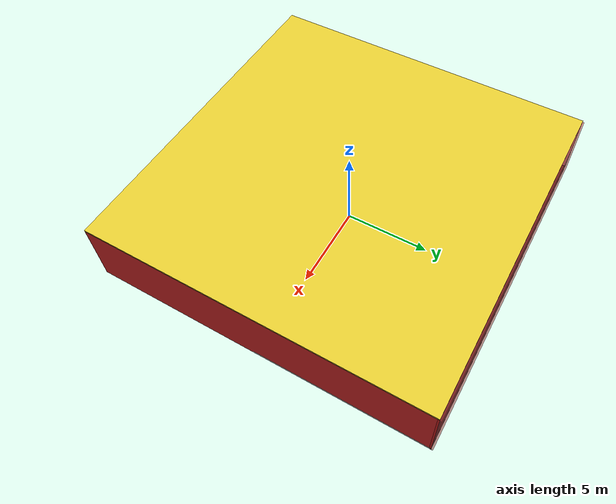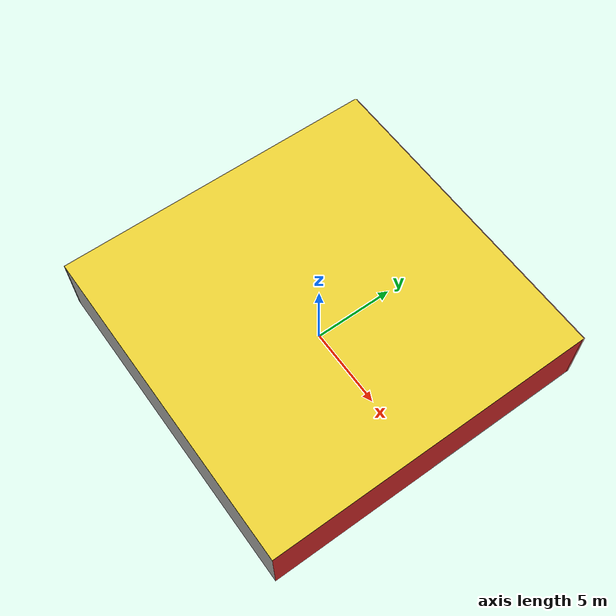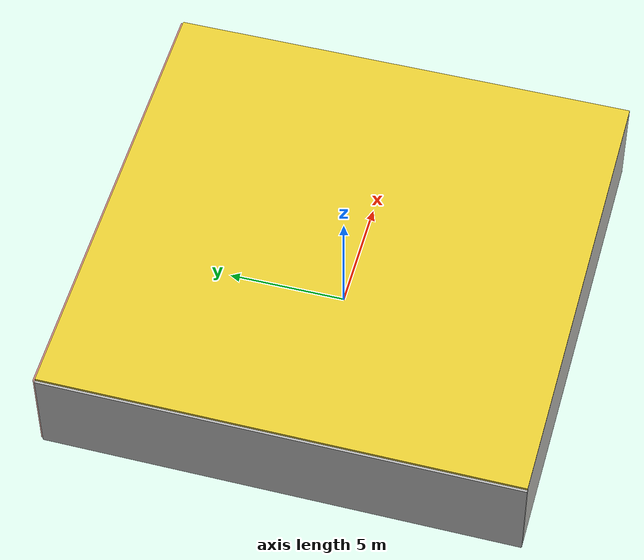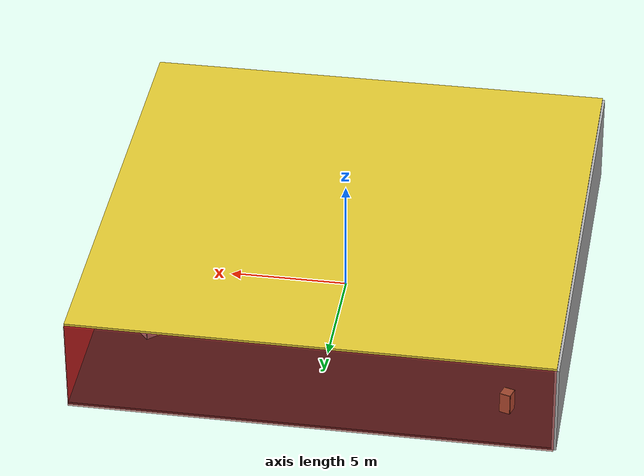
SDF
<sdf version="1.4">
 <world name="default">
  <physics type="ode">
   <max_step_size>0.001</max_step_size>
   <real_time_factor>1</real_time_factor>
   <real_time_update_rate>1000</real_time_update_rate>
   <gravity>0 0 -9.8</gravity>
  </physics>
  <scene><ambient>0.4 0.4 0.4 1</ambient><background>0.7 0.7 0.7 1</background><shadows>1</shadows></scene>
  <model name="Surrounding">
   <static>1</static>
   <link name="Ceiling">
    <collision name="Ceiling_Collision"><geometry><box><size>20 20 0.1</size></box></geometry></collision>
    <visual name="Ceiling_Visual">
     <geometry><box><size>20 20 0.1</size></box></geometry>
     <material>
      <script><uri>file://media/materials/scripts/gazebo.material</uri><name>Gazebo/ZincYellow</name></script>
     </material>
    </visual>
    <pose>0 0 4.05 0 0 0</pose>
   </link>
   <link name="Wall_South">
    <collision name="Wall_South_Collision">
     <geometry><box><size>20 0 4</size></box></geometry>
     <pose>0 0 2 0 -0 0</pose>
    </collision>
    <visual name="Wall_South_Visual">
     <pose>0 0 2 0 -0 0</pose>
     <geometry><box><size>20 0 4</size></box></geometry>
     <material>
      <script><uri>file://media/materials/scripts/gazebo.material</uri><name>Gazebo/CeilingTiled</name></script>
     </material>
    </visual>
    <velocity_decay><linear>0</linear><angular>0</angular></velocity_decay>
    <pose>0 -10 0 0 -0 0</pose>
   </link>
   <link name="Wall_East">
    <collision name="Wall_21_Collision">
     <geometry><box><size>20 0 4</size></box></geometry>
     <pose>0 0 2 0 -0 0</pose>
    </collision>
    <visual name="Wall_21_Visual">
     <pose>0 0 2 0 -0 0</pose>
     <geometry><box><size>20 0 4</size></box></geometry>
     <material>
      <script><uri>file://media/materials/scripts/gazebo.material</uri><name>Gazebo/RedGlow</name></script>
     </material>
    </visual>
    <velocity_decay><linear>0</linear><angular>0</angular></velocity_decay>
    <pose>10 0 0 0 -0 1.5708</pose>
   </link>
   <link name="Wall_North">
    <collision name="Wall_22_Collision">
     <geometry><box><size>20 0.2 4</size></box></geometry>
     <pose>0 0 2 0 -0 0</pose>
    </collision>
    <visual name="Wall_22_Visual">
     <pose>0 0 2 0 -0 0</pose>
     <geometry><box><size>20 0.2 4</size></box></geometry>
     <material>
      <script><uri>file://media/materials/scripts/gazebo.material</uri><name>Gazebo/RedTransparent</name></script>
     </material>
    </visual>
    <velocity_decay><linear>0</linear><angular>0</angular></velocity_decay>
    <pose>0 10 0 0 -0 0</pose>
   </link>
   <link name="Wall_West">
    <collision name="Wall_23_Collision">
     <geometry><box><size>20 0.2 4</size></box></geometry>
     <pose>0 0 2 0 -0 0</pose>
    </collision>
    <visual name="Wall_23_Visual">
     <pose>0 0 2 0 -0 0</pose>
     <geometry><box><size>20 0.2 4</size></box></geometry>
     <material>
      <script><uri>file://media/materials/scripts/gazebo.material</uri><name>Gazebo/LightOff</name></script>
     </material>
    </visual>
    <velocity_decay><linear>0</linear><angular>0</angular></velocity_decay>
    <pose>-10 0 0 0 0 -1.5708</pose>
   </link>
   <link name="Ground_link">
    <collision name="collision">
     <pose>0 0 .05 0 -0 0</pose>
     <geometry><box><size>20 20 0.1</size></box></geometry>
    </collision>
    <visual name="visual">
     <pose>0 0 .05 0 -0 0</pose>
     <geometry><box><size>20 20 0.1</size></box></geometry>
     <material>
      <script><uri>file://media/materials/scripts/gazebo.material</uri><name>Gazebo/FlatBlack</name></script>
     </material>
    </visual>
   </link>
   <static>1</static>
  </model>
  <spherical_coordinates>
   <surface_model>EARTH_WGS84</surface_model>
   <latitude_deg>0</latitude_deg>
   <longitude_deg>0</longitude_deg>
   <elevation>0</elevation>
   <heading_deg>0</heading_deg>
  </spherical_coordinates>
  <light name="lightball_0" type="diffuse">
   <diffuse>0.8 0.8 0.8 1</diffuse>
   <specular>0.2 0.2 0.2 1</specular>
   <attenuation>
    <range>100</range>
    <constant>0.7</constant>
    <linear>0.01</linear>
    <quadratic>0.001</quadratic>
   </attenuation>
   <direction>-0.5 0.1 -0.9</direction>
   <pose>-6.15169123499 7.39757987324 0.650420949445 0 0 0</pose>
  </light>
  <light name="lightball_1" type="diffuse">
   <diffuse>0.8 0.8 0.8 1</diffuse>
   <specular>0.2 0.2 0.2 1</specular>
   <attenuation>
    <range>100</range>
    <constant>0.7</constant>
    <linear>0.01</linear>
    <quadratic>0.001</quadratic>
   </attenuation>
   <direction>-0.5 0.1 -0.9</direction>
   <pose>-6.05150480133 -6.57779399064 0.913782403759 0 0 0</pose>
  </light>
  <light name="lightball_2" type="diffuse">
   <diffuse>0.8 0.8 0.8 1</diffuse>
   <specular>0.2 0.2 0.2 1</specular>
   <attenuation>
    <range>100</range>
    <constant>0.7</constant>
    <linear>0.01</linear>
    <quadratic>0.001</quadratic>
   </attenuation>
   <direction>-0.5 0.1 -0.9</direction>
   <pose>5.24070353186 -7.50209451854 3.01984991993 0 0 0</pose>
  </light>
  <light name="lightball_3" type="diffuse">
   <diffuse>0.8 0.8 0.8 1</diffuse>
   <specular>0.2 0.2 0.2 1</specular>
   <attenuation>
    <range>100</range>
    <constant>0.7</constant>
    <linear>0.01</linear>
    <quadratic>0.001</quadratic>
   </attenuation>
   <direction>-0.5 0.1 -0.9</direction>
   <pose>-8.35807874679 2.24387567389 2.72668415599 0 0 0</pose>
  </light>
  <light name="lightball_4" type="diffuse">
   <diffuse>0.8 0.8 0.8 1</diffuse>
   <specular>0.2 0.2 0.2 1</specular>
   <attenuation>
    <range>100</range>
    <constant>0.7</constant>
    <linear>0.01</linear>
    <quadratic>0.001</quadratic>
   </attenuation>
   <direction>-0.5 0.1 -0.9</direction>
   <pose>4.1630256472 -2.67463930742 3.56754649622 0 0 0</pose>
  </light>
  <light name="lightball_5" type="diffuse">
   <diffuse>0.8 0.8 0.8 1</diffuse>
   <specular>0.2 0.2 0.2 1</specular>
   <attenuation>
    <range>100</range>
    <constant>0.7</constant>
    <linear>0.01</linear>
    <quadratic>0.001</quadratic>
   </attenuation>
   <direction>-0.5 0.1 -0.9</direction>
   <pose>-5.73242293916 -1.99683569546 2.7165009881 0 0 0</pose>
  </light>
  <light name="lightball_6" type="diffuse">
   <diffuse>0.8 0.8 0.8 1</diffuse>
   <specular>0.2 0.2 0.2 1</specular>
   <attenuation>
    <range>100</range>
    <constant>0.7</constant>
    <linear>0.01</linear>
    <quadratic>0.001</quadratic>
   </attenuation>
   <direction>-0.5 0.1 -0.9</direction>
   <pose>2.52191625751 4.36689238818 1.48169288 0 0 0</pose>
  </light>
  <light name="lightball_7" type="diffuse">
   <diffuse>0.8 0.8 0.8 1</diffuse>
   <specular>0.2 0.2 0.2 1</specular>
   <attenuation>
    <range>100</range>
    <constant>0.7</constant>
    <linear>0.01</linear>
    <quadratic>0.001</quadratic>
   </attenuation>
   <direction>-0.5 0.1 -0.9</direction>
   <pose>-7.57421380797 9.30334652707 3.228026606 0 0 0</pose>
  </light>
  <light name="lightball_8" type="diffuse">
   <diffuse>0.8 0.8 0.8 1</diffuse>
   <specular>0.2 0.2 0.2 1</specular>
   <attenuation>
    <range>100</range>
    <constant>0.7</constant>
    <linear>0.01</linear>
    <quadratic>0.001</quadratic>
   </attenuation>
   <direction>-0.5 0.1 -0.9</direction>
   <pose>-1.81105035683 -3.20995346896 1.3500479373 0 0 0</pose>
  </light>
  <light name="lightball_9" type="diffuse">
   <diffuse>0.8 0.8 0.8 1</diffuse>
   <specular>0.2 0.2 0.2 1</specular>
   <attenuation>
    <range>100</range>
    <constant>0.7</constant>
    <linear>0.01</linear>
    <quadratic>0.001</quadratic>
   </attenuation>
   <direction>-0.5 0.1 -0.9</direction>
   <pose>2.18391028606 -7.9598306918 3.74068223224 0 0 0</pose>
  </light>
  <include><uri>model://cabinet</uri><pose>-7.84429761389 7.77862964226 0 0 0 2.84154876412</pose></include>
  <include><uri>model://table</uri><pose>-5.16924785735 -6.73355466145 0 0 0 0.382486486605</pose></include>
  <include><uri>model://table</uri><pose>-4.8165455374 -4.60119376399 0 0 0 2.15904363528</pose></include>
  <include><uri>model://cabinet</uri><pose>-4.55864647624 -2.13744050881 0 0 0 0.474698412441</pose></include>
  <include>
   <uri>model://textured_shapes</uri>
   <pose>6.71792967711 -1.75751532778 0 0 0 2.46434161437</pose>
  </include>
  <include><uri>model://cabinet</uri><pose>6.86357339979 1.56414841227 0 0 0 3.12667464006</pose></include>
  <include>
   <uri>model://robocup_3Dsim_goal</uri>
   <pose>7.94829803508 4.16448289684 0 0 0 0.73744853133</pose>
  </include>
 </world>
</sdf>

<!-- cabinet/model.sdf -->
<sdf version="1.5">
  <model name="cabinet">
    <static>true</static>
    <link name="cabinet_bottom_plate">
      <inertial>
        <pose>0 0 -1 0 0 0</pose>
        <inertia>
          <ixx>2.050000</ixx>
          <ixy>0</ixy>
          <ixz>0</ixz>
          <iyy>2.050000</iyy>
          <iyz>0</iyz>
          <izz>2.050000</izz>
        </inertia>
        <mass>25.000000</mass>
      </inertial>
      <collision name="cabinet_bottom_plate_geom">
        <pose>0 0 0.010000 0 0 0</pose>
        <geometry>
          <box>
            <size>0.450000 0.450000 0.020000</size>
          </box>
        </geometry>
      </collision>
      <visual name="cabinet_bottom_plate_geom_visual">
        <pose>0 0 0.010000 0 0 0</pose>
        <geometry>
          <box>
            <size>0.450000 0.450000 0.020000</size>
          </box>
        </geometry>
        <material>
          <script>
            <uri>model://media/materials/scripts/gazebo.material</uri>
            <name>Gazebo/Wood</name>
          </script>
        </material>
      </visual>
      <collision name="cabinet_bottom_plate_geom_cabinet_back_plate">
        <pose>0.235000 0 0.510000 0 0 0</pose>
        <geometry>
          <box>
            <size>0.020000 0.450000 1.020000</size>
          </box>
        </geometry>
      </collision>
      <visual name="cabinet_bottom_plate_geom_cabinet_back_plate_visual">
        <pose>0.235000 0 0.510000 0 0 0</pose>
        <geometry>
          <box>
            <size>0.020000 0.450000 1.020000</size>
          </box>
        </geometry>
        <material>
          <script>
            <uri>model://media/materials/scripts/gazebo.material</uri>
            <name>Gazebo/Wood</name>
          </script>
        </material>
      </visual>
      <collision name="cabinet_bottom_plate_geom_cabinet_left_plate">
        <pose>0 0.235000 0.510000 0 0 0</pose>
        <geometry>
          <box>
            <size>0.450000 0.020000 1.020000</size>
          </box>
        </geometry>
      </collision>
      <visual name="cabinet_bottom_plate_geom_cabinet_left_plate_visual">
        <pose>0 0.235000 0.510000 0 0 0</pose>
        <geometry>
          <box>
            <size>0.450000 0.020000 1.020000</size>
          </box>
        </geometry>
        <material>
          <script>
            <uri>model://media/materials/scripts/gazebo.material</uri>
            <name>Gazebo/Wood</name>
          </script>
        </material>
      </visual>
      <collision name="cabinet_bottom_plate_geom_cabinet_middle_plate">
        <pose>0 0 0.510000 0 0 0</pose>
        <geometry>
          <box>
            <size>0.450000 0.450000 0.020000</size>
          </box>
        </geometry>
      </collision>
      <visual name="cabinet_bottom_plate_geom_cabinet_middle_plate_visual">
        <pose>0 0 0.510000 0 0 0</pose>
        <geometry>
          <box>
            <size>0.450000 0.450000 0.020000</size>
          </box>
        </geometry>
        <material>
          <script>
            <uri>model://media/materials/scripts/gazebo.material</uri>
            <name>Gazebo/Wood</name>
          </script>
        </material>
      </visual>
      <collision name="cabinet_bottom_plate_geom_cabinet_right_plate">
        <pose>0 -0.235000 0.510000 0 0 0</pose>
        <geometry>
          <box>
            <size>0.450000 0.020000 1.020000</size>
          </box>
        </geometry>
      </collision>
      <visual name="cabinet_bottom_plate_geom_cabinet_right_plate_visual">
        <pose>0 -0.235000 0.510000 0 0 0</pose>
        <geometry>
          <box>
            <size>0.450000 0.020000 1.020000</size>
          </box>
        </geometry>
        <material>
          <script>
            <uri>model://media/materials/scripts/gazebo.material</uri>
            <name>Gazebo/Wood</name>
          </script>
        </material>
      </visual>
      <collision name="cabinet_bottom_plate_geom_cabinet_top_plate">
        <pose>0 0 1.010000 0 0 0</pose>
        <geometry>
          <box>
            <size>0.450000 0.450000 0.020000</size>
          </box>
        </geometry>
      </collision>
      <visual name="cabinet_bottom_plate_geom_cabinet_top_plate_visual">
        <pose>0 0 1.010000 0 0 0</pose>
        <geometry>
          <box>
            <size>0.450000 0.450000 0.020000</size>
          </box>
        </geometry>
        <material>
          <script>
            <uri>model://media/materials/scripts/gazebo.material</uri>
            <name>Gazebo/Wood</name>
          </script>
        </material>
      </visual>
    </link>
  </model>
</sdf>

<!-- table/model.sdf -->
<sdf version="1.5">
  <model name="table">
    <static>true</static>
    <link name="link">
      <collision name="surface">
        <pose>0 0 1.0 0 0 0</pose>
        <geometry>
          <box>
            <size>1.5 0.8 0.03</size>
          </box>
        </geometry>
        <surface>
          <friction>
            <ode>
              <mu>0.6</mu>
              <mu2>0.6</mu2>
            </ode>
          </friction>
        </surface>
      </collision>
      <visual name="visual1">
        <pose>0 0 1.0 0 0 0</pose>
        <geometry>
          <box>
            <size>1.5 0.8 0.03</size>
          </box>
        </geometry>
        <material>
          <script>
            <uri>model://media/materials/scripts/gazebo.material</uri>
            <name>Gazebo/Wood</name>
          </script>
        </material>
      </visual>
      <collision name="front_left_leg">
        <pose>0.68 0.38 0.5 0 0 0</pose>
        <geometry>
          <cylinder>
            <radius>0.02</radius>
            <length>1.0</length>
          </cylinder>
        </geometry>
      </collision>
      <visual name="front_left_leg">
        <pose>0.68 0.38 0.5 0 0 0</pose>
        <geometry>
          <cylinder>
            <radius>0.02</radius>
            <length>1.0</length>
          </cylinder>
        </geometry>
        <material>
          <script>
            <uri>model://media/materials/scripts/gazebo.material</uri>
            <name>Gazebo/Grey</name>
          </script>
        </material>
      </visual>
      <collision name="front_right_leg">
        <pose>0.68 -0.38 0.5 0 0 0</pose>
        <geometry>
          <cylinder>
            <radius>0.02</radius>
            <length>1.0</length>
          </cylinder>
        </geometry>
      </collision>
      <visual name="front_right_leg">
        <pose>0.68 -0.38 0.5 0 0 0</pose>
        <geometry>
          <cylinder>
            <radius>0.02</radius>
            <length>1.0</length>
          </cylinder>
        </geometry>
        <material>
          <script>
            <uri>model://media/materials/scripts/gazebo.material</uri>
            <name>Gazebo/Grey</name>
          </script>
        </material>
      </visual>
      <collision name="back_right_leg">
        <pose>-0.68 -0.38 0.5 0 0 0</pose>
        <geometry>
          <cylinder>
            <radius>0.02</radius>
            <length>1.0</length>
          </cylinder>
        </geometry>
      </collision>
      <visual name="back_right_leg">
        <pose>-0.68 -0.38 0.5 0 0 0</pose>
        <geometry>
          <cylinder>
            <radius>0.02</radius>
            <length>1.0</length>
          </cylinder>
        </geometry>
        <material>
          <script>
            <uri>model://media/materials/scripts/gazebo.material</uri>
            <name>Gazebo/Grey</name>
          </script>
        </material>
      </visual>
      <collision name="back_left_leg">
        <pose>-0.68 0.38 0.5 0 0 0</pose>
        <geometry>
          <cylinder>
            <radius>0.02</radius>
            <length>1.0</length>
          </cylinder>
        </geometry>
      </collision>
      <visual name="back_left_leg">
        <pose>-0.68 0.38 0.5 0 0 0</pose>
        <geometry>
          <cylinder>
            <radius>0.02</radius>
            <length>1.0</length>
          </cylinder>
        </geometry>
        <material>
          <script>
            <uri>model://media/materials/scripts/gazebo.material</uri>
            <name>Gazebo/Grey</name>
          </script>
        </material>
      </visual>
    </link>
  </model>
</sdf>

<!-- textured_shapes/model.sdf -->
<sdf version="1.6">
  <model name="textured_shapes">
    <pose>0 0 0.5 0 0 0</pose>
    <link name="box">
      <pose>0 -1.5 0 0 0 0</pose>
      <collision name="collision">
        <geometry>
          <box>
            <size>1 1 1</size>
          </box>
        </geometry>
      </collision>
      <visual name="visual">
        <geometry>
          <box>
            <size>1 1 1</size>
          </box>
        </geometry>
        <material>
          <script>
            <uri>model://../model_source/models/textured_shapes/materials/scripts</uri>
            <uri>model://../model_source/models/textured_shapes/materials/textures</uri>
            <name>TexturedShape/Squares</name>
          </script>
        </material>
      </visual>
    </link>
    <link name="sphere">
      <collision name="collision">
        <geometry>
          <sphere>
            <radius>0.5</radius>
          </sphere>
        </geometry>
      </collision>
      <visual name="visual">
        <geometry>
          <sphere>
            <radius>0.5</radius>
          </sphere>
        </geometry>
        <material>
          <script>
            <uri>model://../model_source/models/textured_shapes/materials/scripts</uri>
            <uri>model://../model_source/models/textured_shapes/materials/textures</uri>
            <name>TexturedShape/Squares</name>
          </script>
        </material>
      </visual>
    </link>
    <link name="cylinder">
      <pose>0 1.5 0 0 0 0</pose>
      <collision name="collision">
        <geometry>
          <cylinder>
            <radius>0.5</radius>
            <length>1</length>
          </cylinder>
        </geometry>
      </collision>
      <visual name="visual">
        <geometry>
          <cylinder>
            <radius>0.5</radius>
            <length>1</length>
          </cylinder>
        </geometry>
        <material>
          <script>
            <uri>model://../model_source/models/textured_shapes/materials/scripts</uri>
            <uri>model://../model_source/models/textured_shapes/materials/textures</uri>
            <name>TexturedShape/Squares</name>
          </script>
        </material>
      </visual>
    </link>
  </model>
</sdf>

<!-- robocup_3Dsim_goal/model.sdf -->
<sdf version="1.5">
  <model name="robocup_3d_goal">
    <static>true</static>
    <link name="left_post">
      <pose>0 1.05 0.45 0 0 0</pose>
      <collision name="collision">
        <geometry>
          <cylinder>
            <radius>0.05</radius>
            <length>0.9</length>
          </cylinder>
        </geometry>
      </collision>
      <visual name="visual">
        <geometry>
          <cylinder>
            <radius>0.05</radius>
            <length>0.9</length>
          </cylinder>
        </geometry>
        <material>
          <script>
            <uri>file://media/materials/scripts/gazebo.material</uri>
            <name>Gazebo/ZincYellow</name>
          </script>
        </material>
      </visual>
    </link>
    <link name="left_support_horiz_lower">
      <pose>0.30 1.05 0.01 0 0 0</pose>
      <collision name="collision">
        <geometry>
          <box>
            <size>0.50 0.02 0.02</size>
          </box>
        </geometry>
      </collision>
      <visual name="visual">
        <geometry>
          <box>
            <size>0.50 0.02 0.02</size>
          </box>
        </geometry>
        <material>
          <script>
            <uri>file://media/materials/scripts/gazebo.material</uri>
            <name>Gazebo/White</name>
          </script>
        </material>
      </visual>
    </link>
    <link name="left_support_horiz_upper">
      <pose>0.30 1.05 0.79 0 0 0</pose>
      <collision name="collision">
        <geometry>
          <box>
            <size>0.50 0.02 0.02</size>
          </box>
        </geometry>
      </collision>
      <visual name="visual">
        <geometry>
          <box>
            <size>0.50 0.02 0.02</size>
          </box>
        </geometry>
        <material>
          <script>
            <uri>file://media/materials/scripts/gazebo.material</uri>
            <name>Gazebo/White</name>
          </script>
        </material>
      </visual>
    </link>
    <link name="left_support_vertical">
      <pose>0.56 1.05 0.4 0 1.5708 0</pose>
      <collision name="collision">
        <geometry>
          <box>
            <size>0.80 0.02 0.02</size>
          </box>
        </geometry>
      </collision>
      <visual name="visual">
        <geometry>
          <box>
            <size>0.80 0.02 0.02</size>
          </box>
        </geometry>
        <material>
          <script>
            <uri>file://media/materials/scripts/gazebo.material</uri>
            <name>Gazebo/White</name>
          </script>
        </material>
      </visual>
    </link>
    <link name="right_support_horiz_lower">
      <pose>0.30 -1.05 0.01 0 0 0</pose>
      <collision name="collision">
        <geometry>
          <box>
            <size>0.50 0.02 0.02</size>
          </box>
        </geometry>
      </collision>
      <visual name="visual">
        <geometry>
          <box>
            <size>0.50 0.02 0.02</size>
          </box>
        </geometry>
        <material>
          <script>
            <uri>file://media/materials/scripts/gazebo.material</uri>
            <name>Gazebo/White</name>
          </script>
        </material>
      </visual>
    </link>
    <link name="right_support_horiz_upper">
      <pose>0.30 -1.05 0.79 0 0 0</pose>
      <collision name="collision">
        <geometry>
          <box>
            <size>0.50 0.02 0.02</size>
          </box>
        </geometry>
      </collision>
      <visual name="visual">
        <geometry>
          <box>
            <size>0.50 0.02 0.02</size>
          </box>
        </geometry>
        <material>
          <script>
            <uri>file://media/materials/scripts/gazebo.material</uri>
            <name>Gazebo/White</name>
          </script>
        </material>
      </visual>
    </link>
    <link name="right_support_vertical">
      <pose>0.56 -1.05 0.4 0 1.5708 0</pose>
      <collision name="collision">
        <geometry>
          <box>
            <size>0.80 0.02 0.02</size>
          </box>
        </geometry>
      </collision>
      <visual name="visual">
        <geometry>
          <box>
            <size>0.80 0.02 0.02</size>
          </box>
        </geometry>
        <material>
          <script>
            <uri>file://media/materials/scripts/gazebo.material</uri>
            <name>Gazebo/White</name>
          </script>
        </material>
      </visual>
    </link>
    <link name="center_support_horiz_lower">
      <pose>0.56 0 0.01 0 1.5708 0</pose>
      <collision name="collision">
        <geometry>
          <box>
            <size>0.02 2.08 0.02</size>
          </box>
        </geometry>
      </collision>
      <visual name="visual">
        <geometry>
          <box>
            <size>0.02 2.08 0.02</size>
          </box>
        </geometry>
        <material>
          <script>
            <uri>file://media/materials/scripts/gazebo.material</uri>
            <name>Gazebo/White</name>
          </script>
        </material>
      </visual>
    </link>
    <link name="center_support_horiz_upper">
      <pose>0.56 0 0.79 0 1.5708 0</pose>
      <collision name="collision">
        <geometry>
          <box>
            <size>0.02 2.08 0.02</size>
          </box>
        </geometry>
      </collision>
      <visual name="visual">
        <geometry>
          <box>
            <size>0.02 2.08 0.02</size>
          </box>
        </geometry>
        <material>
          <script>
            <uri>file://media/materials/scripts/gazebo.material</uri>
            <name>Gazebo/White</name>
          </script>
        </material>
      </visual>
    </link>
    <link name="right_post">
      <pose>0 -1.05 0.45 0 0 0</pose>
      <collision name="collision">
        <geometry>
          <cylinder>
            <radius>0.05</radius>
            <length>0.9</length>
          </cylinder>
        </geometry>
      </collision>
      <visual name="visual">
        <geometry>
          <cylinder>
            <radius>0.05</radius>
            <length>0.9</length>
          </cylinder>
        </geometry>
        <material>
          <script>
            <uri>file://media/materials/scripts/gazebo.material</uri>
            <name>Gazebo/ZincYellow</name>
          </script>
        </material>
      </visual>
    </link>
    <link name="crossbar">
      <pose>0 0 0.85 1.57 1.57 0</pose>
      <collision name="collision">
        <geometry>
          <cylinder>
            <radius>0.05</radius>
            <length>2.0</length>
          </cylinder>
        </geometry>
      </collision>
      <visual name="visual">
        <geometry>
          <cylinder>
            <radius>0.05</radius>
            <length>2.0</length>
          </cylinder>
        </geometry>
        <material>
          <script>
            <uri>file://media/materials/scripts/gazebo.material</uri>
            <name>Gazebo/ZincYellow</name>
          </script>
        </material>
      </visual>
    </link>
    <link name="center_net">
      <pose>0.56 0 0.40 0 0 0</pose>
      <collision name="collision">
        <geometry>
          <box>
            <size>0.01 2.1 0.80</size>
          </box>
        </geometry>
      </collision>
      <visual name="visual">
        <geometry>
          <box>
            <size>0.01 2.1 0.80</size>
          </box>
        </geometry>
        <material>
          <script>
            <uri>model://../model_source/models/robocup09_spl_field/materials/scripts/</uri>
            <uri>model://../model_source/models/robocup09_spl_field/materials/textures/</uri>
            <name>RoboCup/Net</name>
          </script>
        </material>
      </visual>
    </link>
    <link name="left_net">
      <pose>0.30 1.05 0.40 0 0 0</pose>
      <collision name="collision">
        <geometry>
          <box>
            <size>0.50 0.01 0.76</size>
          </box>
        </geometry>
      </collision>
      <visual name="visual">
        <geometry>
          <box>
            <size>0.50 0.01 0.76</size>
          </box>
        </geometry>
        <material>
          <script>
            <uri>model://../model_source/models/robocup09_spl_field/materials/scripts/</uri>
            <uri>model://../model_source/models/robocup09_spl_field/materials/textures/</uri>
            <name>RoboCup/Net</name>
          </script>
        </material>
      </visual>
    </link>
    <link name="right_net">
      <pose>0.30 -1.05 0.40 0 0 0</pose>
      <collision name="collision">
        <geometry>
          <box>
            <size>0.50 0.01 0.76</size>
          </box>
        </geometry>
      </collision>
      <visual name="visual">
        <geometry>
          <box>
            <size>0.50 0.01 0.76</size>
          </box>
        </geometry>
        <material>
          <script>
            <uri>model://../model_source/models/robocup09_spl_field/materials/scripts/</uri>
            <uri>model://../model_source/models/robocup09_spl_field/materials/textures/</uri>
            <name>RoboCup/Net</name>
          </script>
        </material>
      </visual>
    </link>
  </model>
</sdf>
